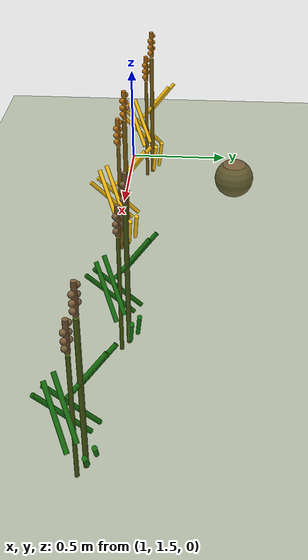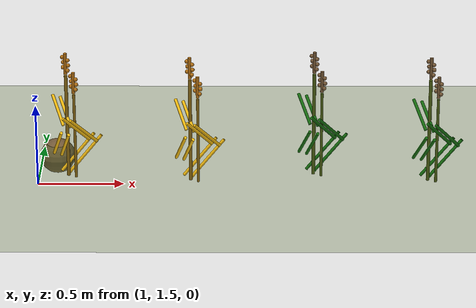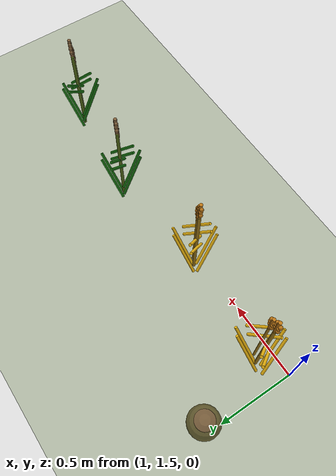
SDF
<sdf version="1.6">
 <world name="default">
  <model name="ground">
   <static>true</static>
   <link name="link">
    <collision name="col"><geometry><plane><normal>0 0 1</normal><size>40 40</size></plane></geometry></collision>
    <visual name="vis">
     <geometry><plane><normal>0 0 1</normal><size>40 40</size></plane></geometry>
     <material><ambient>0.30 0.40 0.15 1</ambient><diffuse>0.30 0.40 0.15 1</diffuse></material>
    </visual>
   </link>
  </model>
  <model name="plant_21">
   <static>true</static>
   <pose>1.17 1.62 0 0 0 0</pose>
   <link name="link">
    <visual name="stem_0">
     <pose>0.000 0.000 0.320 0.000 0.000 0.000</pose>
     <geometry><cylinder><radius>0.01</radius><length>0.64</length></cylinder></geometry>
     <material><ambient>0.55 0.42 0.08 1</ambient><diffuse>0.55 0.42 0.08 1</diffuse></material>
    </visual>
    <visual name="leaf_0_0">
     <pose>0.055 0.045 0.130 0.000 0.700 0.150</pose>
     <geometry><cylinder><radius>0.009</radius><length>0.3</length></cylinder></geometry>
     <material><ambient>0.95 0.73 0.06 1</ambient><diffuse>0.95 0.73 0.06 1</diffuse></material>
    </visual>
    <visual name="leaf_0_1">
     <pose>-0.055 -0.045 0.230 0.000 -0.720 1.900</pose>
     <geometry><cylinder><radius>0.009</radius><length>0.28</length></cylinder></geometry>
     <material><ambient>0.95 0.73 0.06 1</ambient><diffuse>0.95 0.73 0.06 1</diffuse></material>
    </visual>
    <visual name="leaf_0_2">
     <pose>0.055 -0.045 0.320 0.000 0.780 3.700</pose>
     <geometry><cylinder><radius>0.009</radius><length>0.24</length></cylinder></geometry>
     <material><ambient>0.95 0.73 0.06 1</ambient><diffuse>0.95 0.73 0.06 1</diffuse></material>
    </visual>
    <visual name="leaf_0_3">
     <pose>-0.055 0.045 0.400 0.000 -0.800 5.200</pose>
     <geometry><cylinder><radius>0.009</radius><length>0.2</length></cylinder></geometry>
     <material><ambient>0.95 0.73 0.06 1</ambient><diffuse>0.95 0.73 0.06 1</diffuse></material>
    </visual>
    <visual name="stem_1">
     <pose>0.045 -0.025 0.265 0.000 0.000 0.000</pose>
     <geometry><cylinder><radius>0.008</radius><length>0.53</length></cylinder></geometry>
     <material><ambient>0.55 0.42 0.08 1</ambient><diffuse>0.55 0.42 0.08 1</diffuse></material>
    </visual>
    <visual name="leaf_1_0">
     <pose>0.100 0.020 0.130 0.000 0.700 0.150</pose>
     <geometry><cylinder><radius>0.009</radius><length>0.3</length></cylinder></geometry>
     <material><ambient>0.95 0.73 0.06 1</ambient><diffuse>0.95 0.73 0.06 1</diffuse></material>
    </visual>
    <visual name="leaf_1_1">
     <pose>-0.010 -0.070 0.230 0.000 -0.720 1.900</pose>
     <geometry><cylinder><radius>0.009</radius><length>0.28</length></cylinder></geometry>
     <material><ambient>0.95 0.73 0.06 1</ambient><diffuse>0.95 0.73 0.06 1</diffuse></material>
    </visual>
    <visual name="leaf_1_2">
     <pose>0.100 -0.070 0.320 0.000 0.780 3.700</pose>
     <geometry><cylinder><radius>0.009</radius><length>0.24</length></cylinder></geometry>
     <material><ambient>0.95 0.73 0.06 1</ambient><diffuse>0.95 0.73 0.06 1</diffuse></material>
    </visual>
    <visual name="leaf_1_3">
     <pose>-0.010 0.020 0.400 0.000 -0.800 5.200</pose>
     <geometry><cylinder><radius>0.009</radius><length>0.2</length></cylinder></geometry>
     <material><ambient>0.95 0.73 0.06 1</ambient><diffuse>0.95 0.73 0.06 1</diffuse></material>
    </visual>
    <visual name="ear_axis_0">
     <pose>0.000 0.000 0.715 0.000 0.000 0.000</pose>
     <geometry><cylinder><radius>0.010</radius><length>0.13</length></cylinder></geometry>
     <material><ambient>0.72 0.45 0.08 1</ambient><diffuse>0.72 0.45 0.08 1</diffuse></material>
    </visual>
    <visual name="grain_0_0">
     <pose>0.012 -0.006 0.675 0.000 0.000 0.000</pose>
     <geometry><sphere><radius>0.012</radius></sphere></geometry>
     <material><ambient>0.72 0.45 0.08 1</ambient><diffuse>0.72 0.45 0.08 1</diffuse></material>
    </visual>
    <visual name="grain_0_1">
     <pose>-0.014 0.006 0.691 0.000 0.000 0.000</pose>
     <geometry><sphere><radius>0.012</radius></sphere></geometry>
     <material><ambient>0.72 0.45 0.08 1</ambient><diffuse>0.72 0.45 0.08 1</diffuse></material>
    </visual>
    <visual name="grain_0_2">
     <pose>0.016 -0.006 0.707 0.000 0.000 0.000</pose>
     <geometry><sphere><radius>0.012</radius></sphere></geometry>
     <material><ambient>0.72 0.45 0.08 1</ambient><diffuse>0.72 0.45 0.08 1</diffuse></material>
    </visual>
    <visual name="grain_0_3">
     <pose>-0.012 0.006 0.723 0.000 0.000 0.000</pose>
     <geometry><sphere><radius>0.012</radius></sphere></geometry>
     <material><ambient>0.72 0.45 0.08 1</ambient><diffuse>0.72 0.45 0.08 1</diffuse></material>
    </visual>
    <visual name="grain_0_4">
     <pose>0.014 -0.006 0.739 0.000 0.000 0.000</pose>
     <geometry><sphere><radius>0.012</radius></sphere></geometry>
     <material><ambient>0.72 0.45 0.08 1</ambient><diffuse>0.72 0.45 0.08 1</diffuse></material>
    </visual>
    <visual name="grain_0_5">
     <pose>-0.016 0.006 0.755 0.000 0.000 0.000</pose>
     <geometry><sphere><radius>0.012</radius></sphere></geometry>
     <material><ambient>0.72 0.45 0.08 1</ambient><diffuse>0.72 0.45 0.08 1</diffuse></material>
    </visual>
    <visual name="ear_axis_1">
     <pose>0.045 -0.025 0.605 0.000 0.000 0.000</pose>
     <geometry><cylinder><radius>0.010</radius><length>0.13</length></cylinder></geometry>
     <material><ambient>0.72 0.45 0.08 1</ambient><diffuse>0.72 0.45 0.08 1</diffuse></material>
    </visual>
    <visual name="grain_1_0">
     <pose>0.057 -0.031 0.565 0.000 0.000 0.000</pose>
     <geometry><sphere><radius>0.012</radius></sphere></geometry>
     <material><ambient>0.72 0.45 0.08 1</ambient><diffuse>0.72 0.45 0.08 1</diffuse></material>
    </visual>
    <visual name="grain_1_1">
     <pose>0.031 -0.019 0.581 0.000 0.000 0.000</pose>
     <geometry><sphere><radius>0.012</radius></sphere></geometry>
     <material><ambient>0.72 0.45 0.08 1</ambient><diffuse>0.72 0.45 0.08 1</diffuse></material>
    </visual>
    <visual name="grain_1_2">
     <pose>0.061 -0.031 0.597 0.000 0.000 0.000</pose>
     <geometry><sphere><radius>0.012</radius></sphere></geometry>
     <material><ambient>0.72 0.45 0.08 1</ambient><diffuse>0.72 0.45 0.08 1</diffuse></material>
    </visual>
    <visual name="grain_1_3">
     <pose>0.033 -0.019 0.613 0.000 0.000 0.000</pose>
     <geometry><sphere><radius>0.012</radius></sphere></geometry>
     <material><ambient>0.72 0.45 0.08 1</ambient><diffuse>0.72 0.45 0.08 1</diffuse></material>
    </visual>
    <visual name="grain_1_4">
     <pose>0.059 -0.031 0.629 0.000 0.000 0.000</pose>
     <geometry><sphere><radius>0.012</radius></sphere></geometry>
     <material><ambient>0.72 0.45 0.08 1</ambient><diffuse>0.72 0.45 0.08 1</diffuse></material>
    </visual>
    <visual name="grain_1_5">
     <pose>0.029 -0.019 0.645 0.000 0.000 0.000</pose>
     <geometry><sphere><radius>0.012</radius></sphere></geometry>
     <material><ambient>0.72 0.45 0.08 1</ambient><diffuse>0.72 0.45 0.08 1</diffuse></material>
    </visual>
   </link>
  </model>
  <model name="plant_22">
   <static>true</static>
   <pose>1.89 1.56 0 0 0 0</pose>
   <link name="link">
    <visual name="stem_0">
     <pose>0.000 0.000 0.320 0.000 0.000 0.000</pose>
     <geometry><cylinder><radius>0.01</radius><length>0.64</length></cylinder></geometry>
     <material><ambient>0.55 0.42 0.08 1</ambient><diffuse>0.55 0.42 0.08 1</diffuse></material>
    </visual>
    <visual name="leaf_0_0">
     <pose>0.055 0.045 0.130 0.000 0.700 0.150</pose>
     <geometry><cylinder><radius>0.009</radius><length>0.3</length></cylinder></geometry>
     <material><ambient>0.95 0.73 0.06 1</ambient><diffuse>0.95 0.73 0.06 1</diffuse></material>
    </visual>
    <visual name="leaf_0_1">
     <pose>-0.055 -0.045 0.230 0.000 -0.720 1.900</pose>
     <geometry><cylinder><radius>0.009</radius><length>0.28</length></cylinder></geometry>
     <material><ambient>0.95 0.73 0.06 1</ambient><diffuse>0.95 0.73 0.06 1</diffuse></material>
    </visual>
    <visual name="leaf_0_2">
     <pose>0.055 -0.045 0.320 0.000 0.780 3.700</pose>
     <geometry><cylinder><radius>0.009</radius><length>0.24</length></cylinder></geometry>
     <material><ambient>0.95 0.73 0.06 1</ambient><diffuse>0.95 0.73 0.06 1</diffuse></material>
    </visual>
    <visual name="leaf_0_3">
     <pose>-0.055 0.045 0.400 0.000 -0.800 5.200</pose>
     <geometry><cylinder><radius>0.009</radius><length>0.2</length></cylinder></geometry>
     <material><ambient>0.95 0.73 0.06 1</ambient><diffuse>0.95 0.73 0.06 1</diffuse></material>
    </visual>
    <visual name="stem_1">
     <pose>0.045 -0.025 0.265 0.000 0.000 0.000</pose>
     <geometry><cylinder><radius>0.008</radius><length>0.53</length></cylinder></geometry>
     <material><ambient>0.55 0.42 0.08 1</ambient><diffuse>0.55 0.42 0.08 1</diffuse></material>
    </visual>
    <visual name="leaf_1_0">
     <pose>0.100 0.020 0.130 0.000 0.700 0.150</pose>
     <geometry><cylinder><radius>0.009</radius><length>0.3</length></cylinder></geometry>
     <material><ambient>0.95 0.73 0.06 1</ambient><diffuse>0.95 0.73 0.06 1</diffuse></material>
    </visual>
    <visual name="leaf_1_1">
     <pose>-0.010 -0.070 0.230 0.000 -0.720 1.900</pose>
     <geometry><cylinder><radius>0.009</radius><length>0.28</length></cylinder></geometry>
     <material><ambient>0.95 0.73 0.06 1</ambient><diffuse>0.95 0.73 0.06 1</diffuse></material>
    </visual>
    <visual name="leaf_1_2">
     <pose>0.100 -0.070 0.320 0.000 0.780 3.700</pose>
     <geometry><cylinder><radius>0.009</radius><length>0.24</length></cylinder></geometry>
     <material><ambient>0.95 0.73 0.06 1</ambient><diffuse>0.95 0.73 0.06 1</diffuse></material>
    </visual>
    <visual name="leaf_1_3">
     <pose>-0.010 0.020 0.400 0.000 -0.800 5.200</pose>
     <geometry><cylinder><radius>0.009</radius><length>0.2</length></cylinder></geometry>
     <material><ambient>0.95 0.73 0.06 1</ambient><diffuse>0.95 0.73 0.06 1</diffuse></material>
    </visual>
    <visual name="ear_axis_0">
     <pose>0.000 0.000 0.715 0.000 0.000 0.000</pose>
     <geometry><cylinder><radius>0.010</radius><length>0.13</length></cylinder></geometry>
     <material><ambient>0.72 0.45 0.08 1</ambient><diffuse>0.72 0.45 0.08 1</diffuse></material>
    </visual>
    <visual name="grain_0_0">
     <pose>0.012 -0.006 0.675 0.000 0.000 0.000</pose>
     <geometry><sphere><radius>0.012</radius></sphere></geometry>
     <material><ambient>0.72 0.45 0.08 1</ambient><diffuse>0.72 0.45 0.08 1</diffuse></material>
    </visual>
    <visual name="grain_0_1">
     <pose>-0.014 0.006 0.691 0.000 0.000 0.000</pose>
     <geometry><sphere><radius>0.012</radius></sphere></geometry>
     <material><ambient>0.72 0.45 0.08 1</ambient><diffuse>0.72 0.45 0.08 1</diffuse></material>
    </visual>
    <visual name="grain_0_2">
     <pose>0.016 -0.006 0.707 0.000 0.000 0.000</pose>
     <geometry><sphere><radius>0.012</radius></sphere></geometry>
     <material><ambient>0.72 0.45 0.08 1</ambient><diffuse>0.72 0.45 0.08 1</diffuse></material>
    </visual>
    <visual name="grain_0_3">
     <pose>-0.012 0.006 0.723 0.000 0.000 0.000</pose>
     <geometry><sphere><radius>0.012</radius></sphere></geometry>
     <material><ambient>0.72 0.45 0.08 1</ambient><diffuse>0.72 0.45 0.08 1</diffuse></material>
    </visual>
    <visual name="grain_0_4">
     <pose>0.014 -0.006 0.739 0.000 0.000 0.000</pose>
     <geometry><sphere><radius>0.012</radius></sphere></geometry>
     <material><ambient>0.72 0.45 0.08 1</ambient><diffuse>0.72 0.45 0.08 1</diffuse></material>
    </visual>
    <visual name="grain_0_5">
     <pose>-0.016 0.006 0.755 0.000 0.000 0.000</pose>
     <geometry><sphere><radius>0.012</radius></sphere></geometry>
     <material><ambient>0.72 0.45 0.08 1</ambient><diffuse>0.72 0.45 0.08 1</diffuse></material>
    </visual>
    <visual name="ear_axis_1">
     <pose>0.045 -0.025 0.605 0.000 0.000 0.000</pose>
     <geometry><cylinder><radius>0.010</radius><length>0.13</length></cylinder></geometry>
     <material><ambient>0.72 0.45 0.08 1</ambient><diffuse>0.72 0.45 0.08 1</diffuse></material>
    </visual>
    <visual name="grain_1_0">
     <pose>0.057 -0.031 0.565 0.000 0.000 0.000</pose>
     <geometry><sphere><radius>0.012</radius></sphere></geometry>
     <material><ambient>0.72 0.45 0.08 1</ambient><diffuse>0.72 0.45 0.08 1</diffuse></material>
    </visual>
    <visual name="grain_1_1">
     <pose>0.031 -0.019 0.581 0.000 0.000 0.000</pose>
     <geometry><sphere><radius>0.012</radius></sphere></geometry>
     <material><ambient>0.72 0.45 0.08 1</ambient><diffuse>0.72 0.45 0.08 1</diffuse></material>
    </visual>
    <visual name="grain_1_2">
     <pose>0.061 -0.031 0.597 0.000 0.000 0.000</pose>
     <geometry><sphere><radius>0.012</radius></sphere></geometry>
     <material><ambient>0.72 0.45 0.08 1</ambient><diffuse>0.72 0.45 0.08 1</diffuse></material>
    </visual>
    <visual name="grain_1_3">
     <pose>0.033 -0.019 0.613 0.000 0.000 0.000</pose>
     <geometry><sphere><radius>0.012</radius></sphere></geometry>
     <material><ambient>0.72 0.45 0.08 1</ambient><diffuse>0.72 0.45 0.08 1</diffuse></material>
    </visual>
    <visual name="grain_1_4">
     <pose>0.059 -0.031 0.629 0.000 0.000 0.000</pose>
     <geometry><sphere><radius>0.012</radius></sphere></geometry>
     <material><ambient>0.72 0.45 0.08 1</ambient><diffuse>0.72 0.45 0.08 1</diffuse></material>
    </visual>
    <visual name="grain_1_5">
     <pose>0.029 -0.019 0.645 0.000 0.000 0.000</pose>
     <geometry><sphere><radius>0.012</radius></sphere></geometry>
     <material><ambient>0.72 0.45 0.08 1</ambient><diffuse>0.72 0.45 0.08 1</diffuse></material>
    </visual>
   </link>
  </model>
  <model name="plant_23">
   <static>true</static>
   <pose>2.61 1.64 0 0 0 0</pose>
   <link name="link">
    <visual name="stem_0">
     <pose>0.000 0.000 0.320 0.000 0.000 0.000</pose>
     <geometry><cylinder><radius>0.01</radius><length>0.64</length></cylinder></geometry>
     <material><ambient>0.30 0.38 0.08 1</ambient><diffuse>0.30 0.38 0.08 1</diffuse></material>
    </visual>
    <visual name="leaf_0_0">
     <pose>0.055 0.045 0.130 0.000 0.700 0.150</pose>
     <geometry><cylinder><radius>0.009</radius><length>0.3</length></cylinder></geometry>
     <material><ambient>0.08 0.42 0.05 1</ambient><diffuse>0.08 0.42 0.05 1</diffuse></material>
    </visual>
    <visual name="leaf_0_1">
     <pose>-0.055 -0.045 0.230 0.000 -0.720 1.900</pose>
     <geometry><cylinder><radius>0.009</radius><length>0.28</length></cylinder></geometry>
     <material><ambient>0.08 0.42 0.05 1</ambient><diffuse>0.08 0.42 0.05 1</diffuse></material>
    </visual>
    <visual name="leaf_0_2">
     <pose>0.055 -0.045 0.320 0.000 0.780 3.700</pose>
     <geometry><cylinder><radius>0.009</radius><length>0.24</length></cylinder></geometry>
     <material><ambient>0.08 0.42 0.05 1</ambient><diffuse>0.08 0.42 0.05 1</diffuse></material>
    </visual>
    <visual name="leaf_0_3">
     <pose>-0.055 0.045 0.400 0.000 -0.800 5.200</pose>
     <geometry><cylinder><radius>0.009</radius><length>0.2</length></cylinder></geometry>
     <material><ambient>0.08 0.42 0.05 1</ambient><diffuse>0.08 0.42 0.05 1</diffuse></material>
    </visual>
    <visual name="stem_1">
     <pose>0.045 -0.025 0.265 0.000 0.000 0.000</pose>
     <geometry><cylinder><radius>0.008</radius><length>0.53</length></cylinder></geometry>
     <material><ambient>0.30 0.38 0.08 1</ambient><diffuse>0.30 0.38 0.08 1</diffuse></material>
    </visual>
    <visual name="leaf_1_0">
     <pose>0.100 0.020 0.130 0.000 0.700 0.150</pose>
     <geometry><cylinder><radius>0.009</radius><length>0.3</length></cylinder></geometry>
     <material><ambient>0.08 0.42 0.05 1</ambient><diffuse>0.08 0.42 0.05 1</diffuse></material>
    </visual>
    <visual name="leaf_1_1">
     <pose>-0.010 -0.070 0.230 0.000 -0.720 1.900</pose>
     <geometry><cylinder><radius>0.009</radius><length>0.28</length></cylinder></geometry>
     <material><ambient>0.08 0.42 0.05 1</ambient><diffuse>0.08 0.42 0.05 1</diffuse></material>
    </visual>
    <visual name="leaf_1_2">
     <pose>0.100 -0.070 0.320 0.000 0.780 3.700</pose>
     <geometry><cylinder><radius>0.009</radius><length>0.24</length></cylinder></geometry>
     <material><ambient>0.08 0.42 0.05 1</ambient><diffuse>0.08 0.42 0.05 1</diffuse></material>
    </visual>
    <visual name="leaf_1_3">
     <pose>-0.010 0.020 0.400 0.000 -0.800 5.200</pose>
     <geometry><cylinder><radius>0.009</radius><length>0.2</length></cylinder></geometry>
     <material><ambient>0.08 0.42 0.05 1</ambient><diffuse>0.08 0.42 0.05 1</diffuse></material>
    </visual>
    <visual name="ear_axis_0">
     <pose>0.000 0.000 0.715 0.000 0.000 0.000</pose>
     <geometry><cylinder><radius>0.010</radius><length>0.13</length></cylinder></geometry>
     <material><ambient>0.48 0.36 0.22 1</ambient><diffuse>0.48 0.36 0.22 1</diffuse></material>
    </visual>
    <visual name="grain_0_0">
     <pose>0.012 -0.006 0.675 0.000 0.000 0.000</pose>
     <geometry><sphere><radius>0.012</radius></sphere></geometry>
     <material><ambient>0.48 0.36 0.22 1</ambient><diffuse>0.48 0.36 0.22 1</diffuse></material>
    </visual>
    <visual name="grain_0_1">
     <pose>-0.014 0.006 0.691 0.000 0.000 0.000</pose>
     <geometry><sphere><radius>0.012</radius></sphere></geometry>
     <material><ambient>0.48 0.36 0.22 1</ambient><diffuse>0.48 0.36 0.22 1</diffuse></material>
    </visual>
    <visual name="grain_0_2">
     <pose>0.016 -0.006 0.707 0.000 0.000 0.000</pose>
     <geometry><sphere><radius>0.012</radius></sphere></geometry>
     <material><ambient>0.48 0.36 0.22 1</ambient><diffuse>0.48 0.36 0.22 1</diffuse></material>
    </visual>
    <visual name="grain_0_3">
     <pose>-0.012 0.006 0.723 0.000 0.000 0.000</pose>
     <geometry><sphere><radius>0.012</radius></sphere></geometry>
     <material><ambient>0.48 0.36 0.22 1</ambient><diffuse>0.48 0.36 0.22 1</diffuse></material>
    </visual>
    <visual name="grain_0_4">
     <pose>0.014 -0.006 0.739 0.000 0.000 0.000</pose>
     <geometry><sphere><radius>0.012</radius></sphere></geometry>
     <material><ambient>0.48 0.36 0.22 1</ambient><diffuse>0.48 0.36 0.22 1</diffuse></material>
    </visual>
    <visual name="grain_0_5">
     <pose>-0.016 0.006 0.755 0.000 0.000 0.000</pose>
     <geometry><sphere><radius>0.012</radius></sphere></geometry>
     <material><ambient>0.48 0.36 0.22 1</ambient><diffuse>0.48 0.36 0.22 1</diffuse></material>
    </visual>
    <visual name="ear_axis_1">
     <pose>0.045 -0.025 0.605 0.000 0.000 0.000</pose>
     <geometry><cylinder><radius>0.010</radius><length>0.13</length></cylinder></geometry>
     <material><ambient>0.48 0.36 0.22 1</ambient><diffuse>0.48 0.36 0.22 1</diffuse></material>
    </visual>
    <visual name="grain_1_0">
     <pose>0.057 -0.031 0.565 0.000 0.000 0.000</pose>
     <geometry><sphere><radius>0.012</radius></sphere></geometry>
     <material><ambient>0.48 0.36 0.22 1</ambient><diffuse>0.48 0.36 0.22 1</diffuse></material>
    </visual>
    <visual name="grain_1_1">
     <pose>0.031 -0.019 0.581 0.000 0.000 0.000</pose>
     <geometry><sphere><radius>0.012</radius></sphere></geometry>
     <material><ambient>0.48 0.36 0.22 1</ambient><diffuse>0.48 0.36 0.22 1</diffuse></material>
    </visual>
    <visual name="grain_1_2">
     <pose>0.061 -0.031 0.597 0.000 0.000 0.000</pose>
     <geometry><sphere><radius>0.012</radius></sphere></geometry>
     <material><ambient>0.48 0.36 0.22 1</ambient><diffuse>0.48 0.36 0.22 1</diffuse></material>
    </visual>
    <visual name="grain_1_3">
     <pose>0.033 -0.019 0.613 0.000 0.000 0.000</pose>
     <geometry><sphere><radius>0.012</radius></sphere></geometry>
     <material><ambient>0.48 0.36 0.22 1</ambient><diffuse>0.48 0.36 0.22 1</diffuse></material>
    </visual>
    <visual name="grain_1_4">
     <pose>0.059 -0.031 0.629 0.000 0.000 0.000</pose>
     <geometry><sphere><radius>0.012</radius></sphere></geometry>
     <material><ambient>0.48 0.36 0.22 1</ambient><diffuse>0.48 0.36 0.22 1</diffuse></material>
    </visual>
    <visual name="grain_1_5">
     <pose>0.029 -0.019 0.645 0.000 0.000 0.000</pose>
     <geometry><sphere><radius>0.012</radius></sphere></geometry>
     <material><ambient>0.48 0.36 0.22 1</ambient><diffuse>0.48 0.36 0.22 1</diffuse></material>
    </visual>
   </link>
  </model>
  <model name="plant_24">
   <static>true</static>
   <pose>3.28 1.56 0 0 0 0</pose>
   <link name="link">
    <visual name="stem_0">
     <pose>0.000 0.000 0.320 0.000 0.000 0.000</pose>
     <geometry><cylinder><radius>0.01</radius><length>0.64</length></cylinder></geometry>
     <material><ambient>0.30 0.38 0.08 1</ambient><diffuse>0.30 0.38 0.08 1</diffuse></material>
    </visual>
    <visual name="leaf_0_0">
     <pose>0.055 0.045 0.130 0.000 0.700 0.150</pose>
     <geometry><cylinder><radius>0.009</radius><length>0.3</length></cylinder></geometry>
     <material><ambient>0.08 0.42 0.05 1</ambient><diffuse>0.08 0.42 0.05 1</diffuse></material>
    </visual>
    <visual name="leaf_0_1">
     <pose>-0.055 -0.045 0.230 0.000 -0.720 1.900</pose>
     <geometry><cylinder><radius>0.009</radius><length>0.28</length></cylinder></geometry>
     <material><ambient>0.08 0.42 0.05 1</ambient><diffuse>0.08 0.42 0.05 1</diffuse></material>
    </visual>
    <visual name="leaf_0_2">
     <pose>0.055 -0.045 0.320 0.000 0.780 3.700</pose>
     <geometry><cylinder><radius>0.009</radius><length>0.24</length></cylinder></geometry>
     <material><ambient>0.08 0.42 0.05 1</ambient><diffuse>0.08 0.42 0.05 1</diffuse></material>
    </visual>
    <visual name="leaf_0_3">
     <pose>-0.055 0.045 0.400 0.000 -0.800 5.200</pose>
     <geometry><cylinder><radius>0.009</radius><length>0.2</length></cylinder></geometry>
     <material><ambient>0.08 0.42 0.05 1</ambient><diffuse>0.08 0.42 0.05 1</diffuse></material>
    </visual>
    <visual name="stem_1">
     <pose>0.045 -0.025 0.265 0.000 0.000 0.000</pose>
     <geometry><cylinder><radius>0.008</radius><length>0.53</length></cylinder></geometry>
     <material><ambient>0.30 0.38 0.08 1</ambient><diffuse>0.30 0.38 0.08 1</diffuse></material>
    </visual>
    <visual name="leaf_1_0">
     <pose>0.100 0.020 0.130 0.000 0.700 0.150</pose>
     <geometry><cylinder><radius>0.009</radius><length>0.3</length></cylinder></geometry>
     <material><ambient>0.08 0.42 0.05 1</ambient><diffuse>0.08 0.42 0.05 1</diffuse></material>
    </visual>
    <visual name="leaf_1_1">
     <pose>-0.010 -0.070 0.230 0.000 -0.720 1.900</pose>
     <geometry><cylinder><radius>0.009</radius><length>0.28</length></cylinder></geometry>
     <material><ambient>0.08 0.42 0.05 1</ambient><diffuse>0.08 0.42 0.05 1</diffuse></material>
    </visual>
    <visual name="leaf_1_2">
     <pose>0.100 -0.070 0.320 0.000 0.780 3.700</pose>
     <geometry><cylinder><radius>0.009</radius><length>0.24</length></cylinder></geometry>
     <material><ambient>0.08 0.42 0.05 1</ambient><diffuse>0.08 0.42 0.05 1</diffuse></material>
    </visual>
    <visual name="leaf_1_3">
     <pose>-0.010 0.020 0.400 0.000 -0.800 5.200</pose>
     <geometry><cylinder><radius>0.009</radius><length>0.2</length></cylinder></geometry>
     <material><ambient>0.08 0.42 0.05 1</ambient><diffuse>0.08 0.42 0.05 1</diffuse></material>
    </visual>
    <visual name="ear_axis_0">
     <pose>0.000 0.000 0.715 0.000 0.000 0.000</pose>
     <geometry><cylinder><radius>0.010</radius><length>0.13</length></cylinder></geometry>
     <material><ambient>0.48 0.36 0.22 1</ambient><diffuse>0.48 0.36 0.22 1</diffuse></material>
    </visual>
    <visual name="grain_0_0">
     <pose>0.012 -0.006 0.675 0.000 0.000 0.000</pose>
     <geometry><sphere><radius>0.012</radius></sphere></geometry>
     <material><ambient>0.48 0.36 0.22 1</ambient><diffuse>0.48 0.36 0.22 1</diffuse></material>
    </visual>
    <visual name="grain_0_1">
     <pose>-0.014 0.006 0.691 0.000 0.000 0.000</pose>
     <geometry><sphere><radius>0.012</radius></sphere></geometry>
     <material><ambient>0.48 0.36 0.22 1</ambient><diffuse>0.48 0.36 0.22 1</diffuse></material>
    </visual>
    <visual name="grain_0_2">
     <pose>0.016 -0.006 0.707 0.000 0.000 0.000</pose>
     <geometry><sphere><radius>0.012</radius></sphere></geometry>
     <material><ambient>0.48 0.36 0.22 1</ambient><diffuse>0.48 0.36 0.22 1</diffuse></material>
    </visual>
    <visual name="grain_0_3">
     <pose>-0.012 0.006 0.723 0.000 0.000 0.000</pose>
     <geometry><sphere><radius>0.012</radius></sphere></geometry>
     <material><ambient>0.48 0.36 0.22 1</ambient><diffuse>0.48 0.36 0.22 1</diffuse></material>
    </visual>
    <visual name="grain_0_4">
     <pose>0.014 -0.006 0.739 0.000 0.000 0.000</pose>
     <geometry><sphere><radius>0.012</radius></sphere></geometry>
     <material><ambient>0.48 0.36 0.22 1</ambient><diffuse>0.48 0.36 0.22 1</diffuse></material>
    </visual>
    <visual name="grain_0_5">
     <pose>-0.016 0.006 0.755 0.000 0.000 0.000</pose>
     <geometry><sphere><radius>0.012</radius></sphere></geometry>
     <material><ambient>0.48 0.36 0.22 1</ambient><diffuse>0.48 0.36 0.22 1</diffuse></material>
    </visual>
    <visual name="ear_axis_1">
     <pose>0.045 -0.025 0.605 0.000 0.000 0.000</pose>
     <geometry><cylinder><radius>0.010</radius><length>0.13</length></cylinder></geometry>
     <material><ambient>0.48 0.36 0.22 1</ambient><diffuse>0.48 0.36 0.22 1</diffuse></material>
    </visual>
    <visual name="grain_1_0">
     <pose>0.057 -0.031 0.565 0.000 0.000 0.000</pose>
     <geometry><sphere><radius>0.012</radius></sphere></geometry>
     <material><ambient>0.48 0.36 0.22 1</ambient><diffuse>0.48 0.36 0.22 1</diffuse></material>
    </visual>
    <visual name="grain_1_1">
     <pose>0.031 -0.019 0.581 0.000 0.000 0.000</pose>
     <geometry><sphere><radius>0.012</radius></sphere></geometry>
     <material><ambient>0.48 0.36 0.22 1</ambient><diffuse>0.48 0.36 0.22 1</diffuse></material>
    </visual>
    <visual name="grain_1_2">
     <pose>0.061 -0.031 0.597 0.000 0.000 0.000</pose>
     <geometry><sphere><radius>0.012</radius></sphere></geometry>
     <material><ambient>0.48 0.36 0.22 1</ambient><diffuse>0.48 0.36 0.22 1</diffuse></material>
    </visual>
    <visual name="grain_1_3">
     <pose>0.033 -0.019 0.613 0.000 0.000 0.000</pose>
     <geometry><sphere><radius>0.012</radius></sphere></geometry>
     <material><ambient>0.48 0.36 0.22 1</ambient><diffuse>0.48 0.36 0.22 1</diffuse></material>
    </visual>
    <visual name="grain_1_4">
     <pose>0.059 -0.031 0.629 0.000 0.000 0.000</pose>
     <geometry><sphere><radius>0.012</radius></sphere></geometry>
     <material><ambient>0.48 0.36 0.22 1</ambient><diffuse>0.48 0.36 0.22 1</diffuse></material>
    </visual>
    <visual name="grain_1_5">
     <pose>0.029 -0.019 0.645 0.000 0.000 0.000</pose>
     <geometry><sphere><radius>0.012</radius></sphere></geometry>
     <material><ambient>0.48 0.36 0.22 1</ambient><diffuse>0.48 0.36 0.22 1</diffuse></material>
    </visual>
   </link>
  </model>
  <model name="bump_2_08">
   <static>true</static>
   <pose>1.07 2.06 -0.086 0 0 0</pose>
   <link name="link">
    <collision name="c"><geometry><sphere><radius>0.106</radius></sphere></geometry></collision>
    <visual name="v">
     <geometry><sphere><radius>0.106</radius></sphere></geometry>
     <material><ambient>0.45 0.35 0.22 1</ambient><diffuse>0.45 0.35 0.22 1</diffuse></material>
    </visual>
   </link>
  </model>
 </world>
</sdf>
